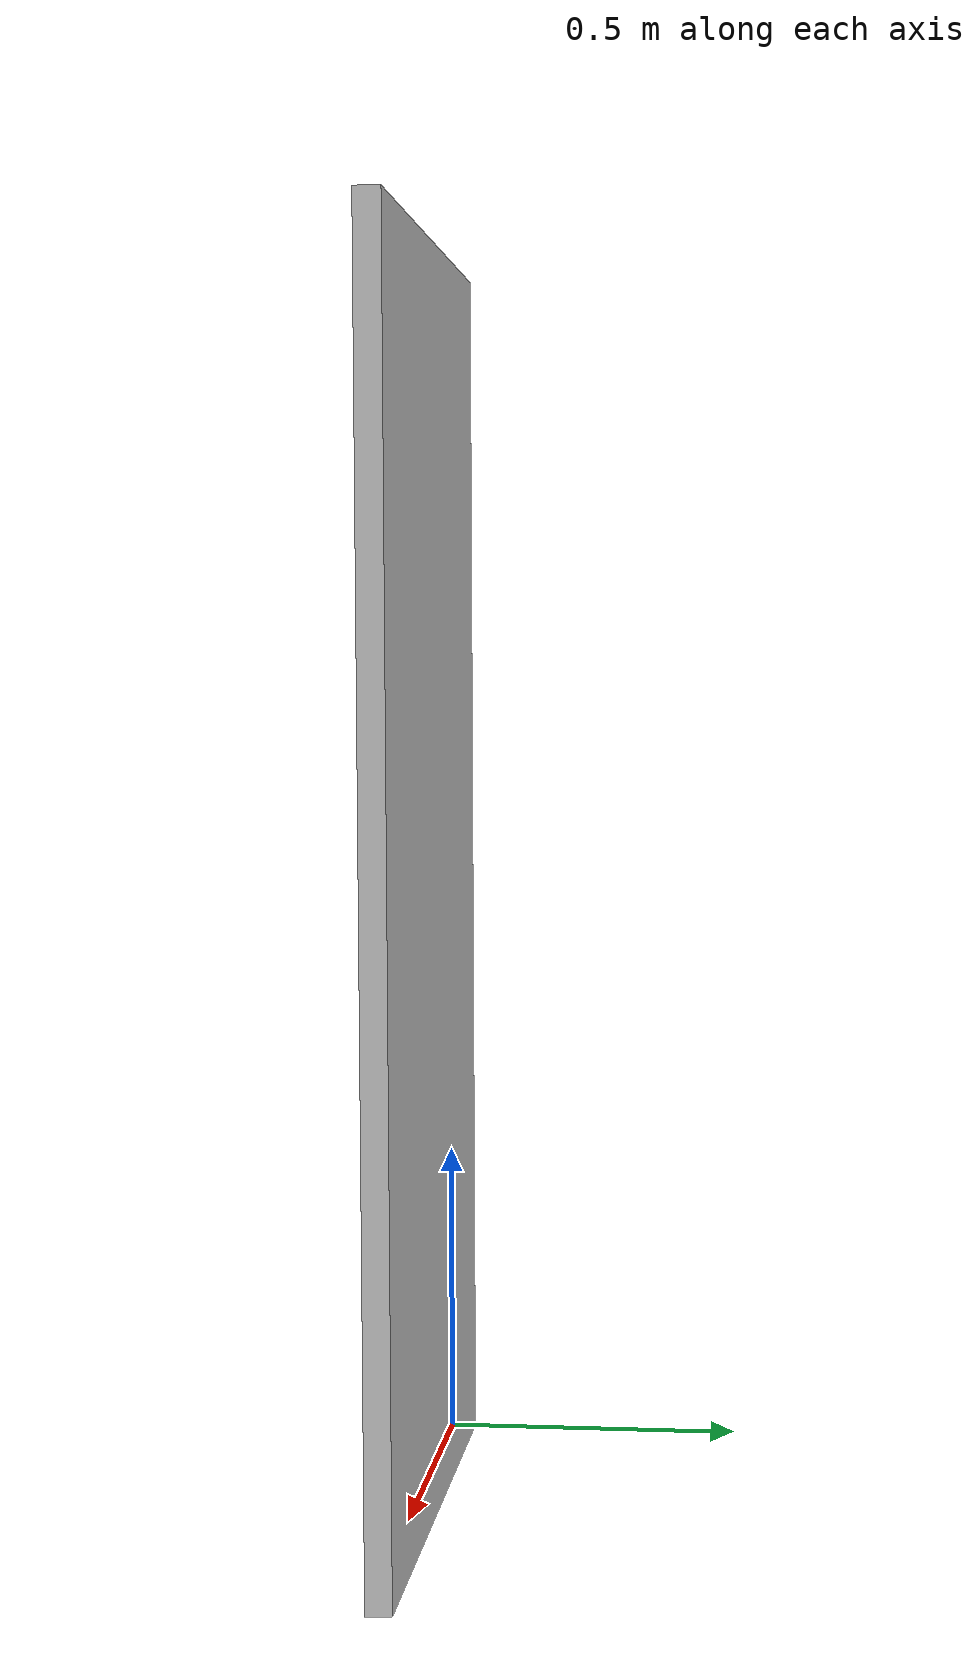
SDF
<?xml version="1.0" ?>
<sdf version="1.5">
  <model name="door">
    <static>true</static>
    <link name="link">
      <collision name="collision">
        <geometry>
          <mesh>
            <uri>model://door/meshes/door.obj</uri>
            <scale>0.01 0.01 0.01</scale>
          </mesh>
        </geometry>
      </collision>
      <visual name="visual">
        <geometry>
          <mesh>
            <uri>model://door/meshes/door.obj</uri>
            <scale>0.01 0.01 0.01</scale>
          </mesh>
        </geometry>
        <plugin filename="gz-sim-label-system" name="gz::sim::systems::Label">
          <label>7</label>
        </plugin>
      </visual>
    </link>
  </model>
</sdf>
